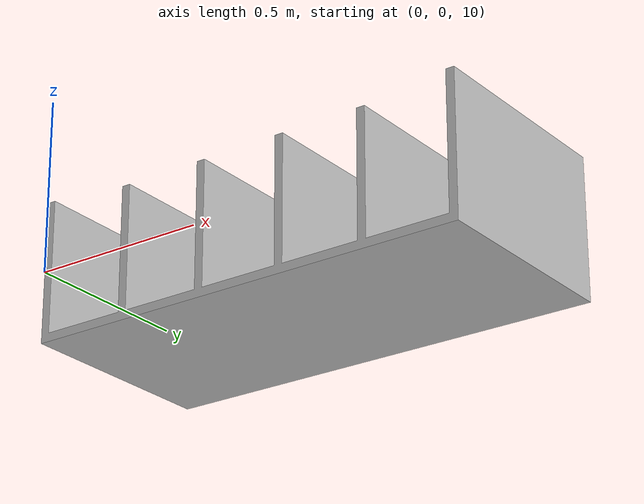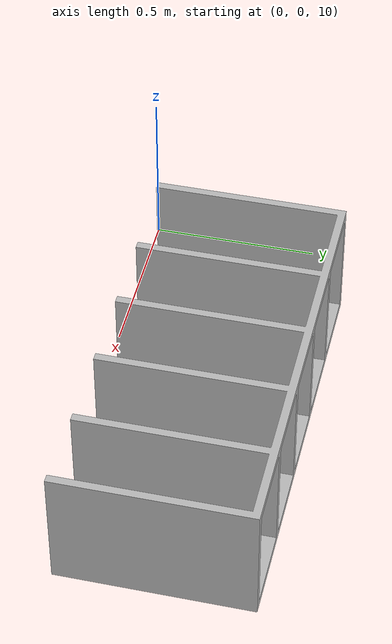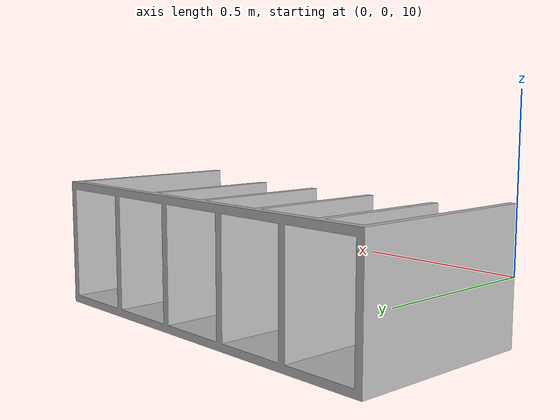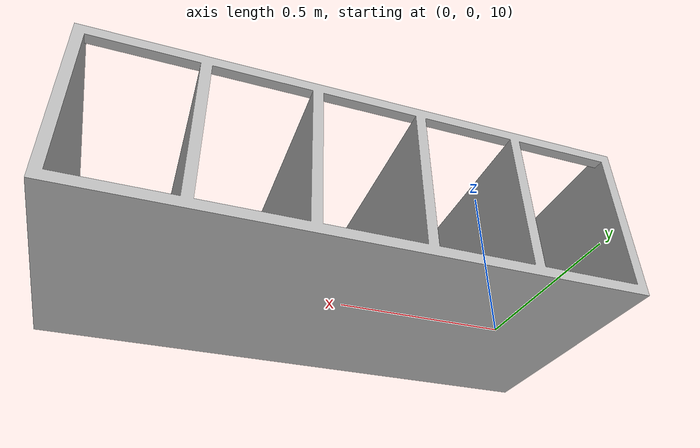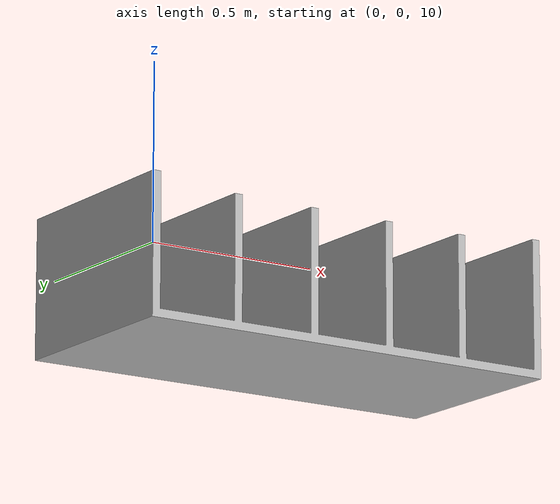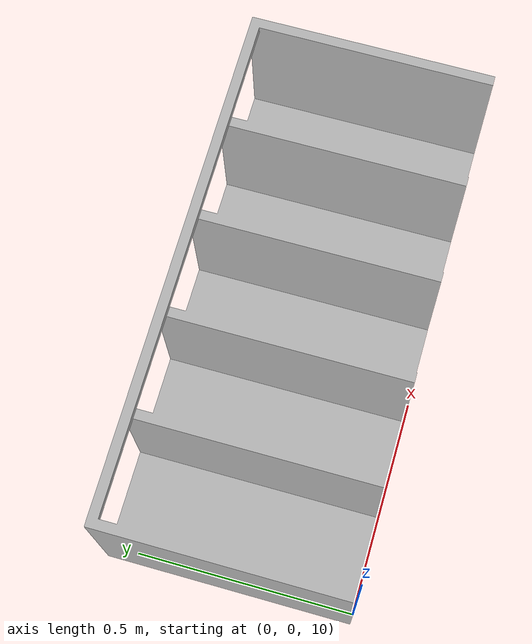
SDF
<?xml version="1.0" ?>
<sdf version="1.4">
  <model name="BlueGoal">
    <pose>0 0 0  0 0 0</pose>
     <static>true</static>
    <link name="link">
      <collision name="collision">
        <geometry>
          <mesh>
            <uri>model://race_goal/meshes/race_goal2.STL</uri>
          </mesh>
        </geometry>
      </collision>
      <visual name="visual">
        <geometry>
          <mesh>
            <uri>model://race_goal/meshes/race_goal2.STL</uri>
          </mesh>
        </geometry>
      </visual>
    </link>
  </model>
 </sdf>
